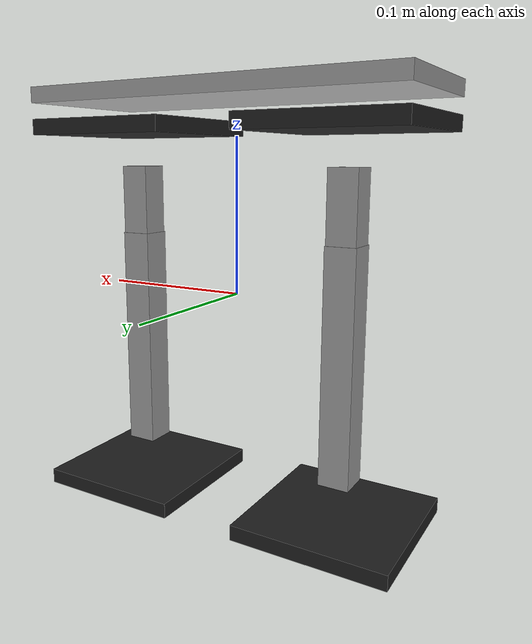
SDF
<?xml version='1.0'?>
<sdf version='1.7'>
  <model name='hyrecro_B_serial_no_sensor'>
    <link name='foot_A'>
      <inertial>
        <mass>1</mass>
        <inertia>
          <ixx>0.166667</ixx>
          <ixy>0</ixy>
          <ixz>0</ixz>
          <iyy>0.166667</iyy>
          <iyz>0</iyz>
          <izz>0.166667</izz>
        </inertia>
        <pose>0 0 0 0 -0 0</pose>
      </inertial>
      <pose>-0.075 -0 -0.138333 0 -0 0</pose>
      <gravity>1</gravity>
      <self_collide>0</self_collide>
      <kinematic>0</kinematic>
      <enable_wind>0</enable_wind>
      <visual name='visual'>
        <pose>0 0 0 0 -0 0</pose>
        <geometry>
          <box>
            <size>0.1 0.1 0.01</size>
          </box>
        </geometry>
        <material>
          <lighting>1</lighting>
          <script>
            <uri>file://media/materials/scripts/gazebo.material</uri>
            <name>Gazebo/Black</name>
          </script>
          <shader type='pixel'>
            <normal_map>__default__</normal_map>
          </shader>
          <ambient>0 0 0 1</ambient>
          <diffuse>0.7 0.7 0.7 1</diffuse>
          <specular>0.01 0.01 0.01 1</specular>
          <emissive>0 0 0 1</emissive>
        </material>
        <transparency>0</transparency>
        <cast_shadows>1</cast_shadows>
      </visual>
      <collision name='collision'>
        <laser_retro>0</laser_retro>
        <max_contacts>10</max_contacts>
        <pose>0 0 0 0 -0 0</pose>
        <geometry>
          <box>
            <size>0.1 0.1 0.01</size>
          </box>
        </geometry>
        <surface>
          <friction>
            <ode>
              <mu>1</mu>
              <mu2>1</mu2>
              <fdir1>0 0 0</fdir1>
              <slip1>0</slip1>
              <slip2>0</slip2>
            </ode>
            <torsional>
              <coefficient>1</coefficient>
              <patch_radius>0</patch_radius>
              <surface_radius>0</surface_radius>
              <use_patch_radius>1</use_patch_radius>
              <ode>
                <slip>0</slip>
              </ode>
            </torsional>
          </friction>
          <bounce>
            <restitution_coefficient>0</restitution_coefficient>
            <threshold>1e+06</threshold>
          </bounce>
          <contact>
            <collide_without_contact>0</collide_without_contact>
            <collide_without_contact_bitmask>1</collide_without_contact_bitmask>
            <collide_bitmask>1</collide_bitmask>
            <ode>
              <soft_cfm>0</soft_cfm>
              <soft_erp>0.2</soft_erp>
              <kp>1e+13</kp>
              <kd>1</kd>
              <max_vel>0.01</max_vel>
              <min_depth>0</min_depth>
            </ode>
            <bullet>
              <split_impulse>1</split_impulse>
              <split_impulse_penetration_threshold>-0.01</split_impulse_penetration_threshold>
              <soft_cfm>0</soft_cfm>
              <soft_erp>0.2</soft_erp>
              <kp>1e+13</kp>
              <kd>1</kd>
            </bullet>
          </contact>
        </surface>
      </collision>
    </link>
    <link name='foot_B'>
      <inertial>
        <mass>1</mass>
        <inertia>
          <ixx>0.166667</ixx>
          <ixy>0</ixy>
          <ixz>0</ixz>
          <iyy>0.166667</iyy>
          <iyz>0</iyz>
          <izz>0.166667</izz>
        </inertia>
        <pose>0 0 0 0 -0 0</pose>
      </inertial>
      <pose>0.075 0 -0.138333 0 -0 0</pose>
      <gravity>1</gravity>
      <self_collide>0</self_collide>
      <kinematic>0</kinematic>
      <enable_wind>0</enable_wind>
      <visual name='visual'>
        <pose>0 0 0 0 -0 0</pose>
        <geometry>
          <box>
            <size>0.1 0.1 0.01</size>
          </box>
        </geometry>
        <material>
          <lighting>1</lighting>
          <script>
            <uri>file://media/materials/scripts/gazebo.material</uri>
            <name>Gazebo/Black</name>
          </script>
          <shader type='pixel'>
            <normal_map>__default__</normal_map>
          </shader>
          <ambient>0.961 0.475 0 1</ambient>
          <diffuse>0.7 0.7 0.7 1</diffuse>
          <specular>0.01 0.01 0.01 1</specular>
          <emissive>0 0 0 1</emissive>
        </material>
        <transparency>0</transparency>
        <cast_shadows>1</cast_shadows>
      </visual>
      <collision name='collision'>
        <laser_retro>0</laser_retro>
        <max_contacts>10</max_contacts>
        <pose>0 0 0 0 -0 0</pose>
        <geometry>
          <box>
            <size>0.1 0.1 0.01</size>
          </box>
        </geometry>
        <surface>
          <friction>
            <ode>
              <mu>1</mu>
              <mu2>1</mu2>
              <fdir1>0 0 0</fdir1>
              <slip1>0</slip1>
              <slip2>0</slip2>
            </ode>
            <torsional>
              <coefficient>1</coefficient>
              <patch_radius>0</patch_radius>
              <surface_radius>0</surface_radius>
              <use_patch_radius>1</use_patch_radius>
              <ode>
                <slip>0</slip>
              </ode>
            </torsional>
          </friction>
          <bounce>
            <restitution_coefficient>0</restitution_coefficient>
            <threshold>1e+06</threshold>
          </bounce>
          <contact>
            <collide_without_contact>0</collide_without_contact>
            <collide_without_contact_bitmask>1</collide_without_contact_bitmask>
            <collide_bitmask>1</collide_bitmask>
            <ode>
              <soft_cfm>0</soft_cfm>
              <soft_erp>0.2</soft_erp>
              <kp>1e+13</kp>
              <kd>1</kd>
              <max_vel>0.01</max_vel>
              <min_depth>0</min_depth>
            </ode>
            <bullet>
              <split_impulse>1</split_impulse>
              <split_impulse_penetration_threshold>-0.01</split_impulse_penetration_threshold>
              <soft_cfm>0</soft_cfm>
              <soft_erp>0.2</soft_erp>
              <kp>1e+13</kp>
              <kd>1</kd>
            </bullet>
          </contact>
        </surface>
      </collision>
    </link>
    <link name='hip'>
      <inertial>
        <mass>1</mass>
        <inertia>
          <ixx>0.166667</ixx>
          <ixy>0</ixy>
          <ixz>0</ixz>
          <iyy>0.166667</iyy>
          <iyz>0</iyz>
          <izz>0.166667</izz>
        </inertia>
        <pose>0 0 0 0 -0 0</pose>
      </inertial>
      <pose>0 -0 0.126667 0 -0 0</pose>
      <gravity>1</gravity>
      <self_collide>0</self_collide>
      <kinematic>0</kinematic>
      <enable_wind>0</enable_wind>
      <visual name='visual'>
        <pose>0 0 0 0 -0 0</pose>
        <geometry>
          <box>
            <size>0.25 0.1 0.01</size>
          </box>
        </geometry>
        <material>
          <lighting>1</lighting>
          <script>
            <uri>file://media/materials/scripts/gazebo.material</uri>
            <name>Gazebo/Grey</name>
          </script>
          <shader type='pixel'>
            <normal_map>__default__</normal_map>
          </shader>
          <ambient>0.729 0.741 0.714 1</ambient>
          <diffuse>0.7 0.7 0.7 1</diffuse>
          <specular>0.01 0.01 0.01 1</specular>
          <emissive>0 0 0 1</emissive>
        </material>
        <transparency>0</transparency>
        <cast_shadows>1</cast_shadows>
      </visual>
      <collision name='collision'>
        <laser_retro>0</laser_retro>
        <max_contacts>10</max_contacts>
        <pose>0 0 0 0 -0 0</pose>
        <geometry>
          <box>
            <size>0.25 0.1 0.01</size>
          </box>
        </geometry>
        <surface>
          <friction>
            <ode>
              <mu>1</mu>
              <mu2>1</mu2>
              <fdir1>0 0 0</fdir1>
              <slip1>0</slip1>
              <slip2>0</slip2>
            </ode>
            <torsional>
              <coefficient>1</coefficient>
              <patch_radius>0</patch_radius>
              <surface_radius>0</surface_radius>
              <use_patch_radius>1</use_patch_radius>
              <ode>
                <slip>0</slip>
              </ode>
            </torsional>
          </friction>
          <bounce>
            <restitution_coefficient>0</restitution_coefficient>
            <threshold>1e+06</threshold>
          </bounce>
          <contact>
            <collide_without_contact>0</collide_without_contact>
            <collide_without_contact_bitmask>1</collide_without_contact_bitmask>
            <collide_bitmask>1</collide_bitmask>
            <ode>
              <soft_cfm>0</soft_cfm>
              <soft_erp>0.2</soft_erp>
              <kp>1e+13</kp>
              <kd>1</kd>
              <max_vel>0.01</max_vel>
              <min_depth>0</min_depth>
            </ode>
            <bullet>
              <split_impulse>1</split_impulse>
              <split_impulse_penetration_threshold>-0.01</split_impulse_penetration_threshold>
              <soft_cfm>0</soft_cfm>
              <soft_erp>0.2</soft_erp>
              <kp>1e+13</kp>
              <kd>1</kd>
            </bullet>
          </contact>
        </surface>
      </collision>
    </link>
    <link name='hip_A'>
      <inertial>
        <mass>1</mass>
        <inertia>
          <ixx>0.166667</ixx>
          <ixy>0</ixy>
          <ixz>0</ixz>
          <iyy>0.166667</iyy>
          <iyz>0</iyz>
          <izz>0.166667</izz>
        </inertia>
        <pose>0 0 0 0 -0 0</pose>
      </inertial>
      <pose>-0.075 0 0.106667 0 -0 0</pose>
      <gravity>1</gravity>
      <self_collide>0</self_collide>
      <kinematic>0</kinematic>
      <enable_wind>0</enable_wind>
      <visual name='visual'>
        <pose>0 0 0 0 -0 0</pose>
        <geometry>
          <box>
            <size>0.1 0.1 0.01</size>
          </box>
        </geometry>
        <material>
          <lighting>1</lighting>
          <script>
            <uri>file://media/materials/scripts/gazebo.material</uri>
            <name>Gazebo/Black</name>
          </script>
          <shader type='pixel'>
            <normal_map>__default__</normal_map>
          </shader>
          <ambient>0 0 0 1</ambient>
          <diffuse>0.7 0.7 0.7 1</diffuse>
          <specular>0.01 0.01 0.01 1</specular>
          <emissive>0 0 0 1</emissive>
        </material>
        <transparency>0</transparency>
        <cast_shadows>1</cast_shadows>
      </visual>
      <collision name='collision'>
        <laser_retro>0</laser_retro>
        <max_contacts>10</max_contacts>
        <pose>0 0 0 0 -0 0</pose>
        <geometry>
          <box>
            <size>0.1 0.1 0.01</size>
          </box>
        </geometry>
        <surface>
          <friction>
            <ode>
              <mu>1</mu>
              <mu2>1</mu2>
              <fdir1>0 0 0</fdir1>
              <slip1>0</slip1>
              <slip2>0</slip2>
            </ode>
            <torsional>
              <coefficient>1</coefficient>
              <patch_radius>0</patch_radius>
              <surface_radius>0</surface_radius>
              <use_patch_radius>1</use_patch_radius>
              <ode>
                <slip>0</slip>
              </ode>
            </torsional>
          </friction>
          <bounce>
            <restitution_coefficient>0</restitution_coefficient>
            <threshold>1e+06</threshold>
          </bounce>
          <contact>
            <collide_without_contact>0</collide_without_contact>
            <collide_without_contact_bitmask>1</collide_without_contact_bitmask>
            <collide_bitmask>1</collide_bitmask>
            <ode>
              <soft_cfm>0</soft_cfm>
              <soft_erp>0.2</soft_erp>
              <kp>1e+13</kp>
              <kd>1</kd>
              <max_vel>0.01</max_vel>
              <min_depth>0</min_depth>
            </ode>
            <bullet>
              <split_impulse>1</split_impulse>
              <split_impulse_penetration_threshold>-0.01</split_impulse_penetration_threshold>
              <soft_cfm>0</soft_cfm>
              <soft_erp>0.2</soft_erp>
              <kp>1e+13</kp>
              <kd>1</kd>
            </bullet>
          </contact>
        </surface>
      </collision>
    </link>
    <link name='hip_B'>
      <inertial>
        <mass>1</mass>
        <inertia>
          <ixx>0.166667</ixx>
          <ixy>0</ixy>
          <ixz>0</ixz>
          <iyy>0.166667</iyy>
          <iyz>0</iyz>
          <izz>0.166667</izz>
        </inertia>
        <pose>0 0 0 0 -0 0</pose>
      </inertial>
      <pose>0.075 0 0.106667 0 -0 0</pose>
      <gravity>1</gravity>
      <self_collide>0</self_collide>
      <kinematic>0</kinematic>
      <enable_wind>0</enable_wind>
      <visual name='visual'>
        <pose>0 0 0 0 -0 0</pose>
        <geometry>
          <box>
            <size>0.1 0.1 0.01</size>
          </box>
        </geometry>
        <material>
          <lighting>1</lighting>
          <script>
            <uri>file://media/materials/scripts/gazebo.material</uri>
            <name>Gazebo/Black</name>
          </script>
          <shader type='pixel'>
            <normal_map>__default__</normal_map>
          </shader>
          <ambient>0 0 0 1</ambient>
          <diffuse>0.7 0.7 0.7 1</diffuse>
          <specular>0.01 0.01 0.01 1</specular>
          <emissive>0 0 0 1</emissive>
        </material>
        <transparency>0</transparency>
        <cast_shadows>1</cast_shadows>
      </visual>
      <collision name='collision'>
        <laser_retro>0</laser_retro>
        <max_contacts>10</max_contacts>
        <pose>0 0 0 0 -0 0</pose>
        <geometry>
          <box>
            <size>0.1 0.1 0.01</size>
          </box>
        </geometry>
        <surface>
          <friction>
            <ode>
              <mu>1</mu>
              <mu2>1</mu2>
              <fdir1>0 0 0</fdir1>
              <slip1>0</slip1>
              <slip2>0</slip2>
            </ode>
            <torsional>
              <coefficient>1</coefficient>
              <patch_radius>0</patch_radius>
              <surface_radius>0</surface_radius>
              <use_patch_radius>1</use_patch_radius>
              <ode>
                <slip>0</slip>
              </ode>
            </torsional>
          </friction>
          <bounce>
            <restitution_coefficient>0</restitution_coefficient>
            <threshold>1e+06</threshold>
          </bounce>
          <contact>
            <collide_without_contact>0</collide_without_contact>
            <collide_without_contact_bitmask>1</collide_without_contact_bitmask>
            <collide_bitmask>1</collide_bitmask>
            <ode>
              <soft_cfm>0</soft_cfm>
              <soft_erp>0.2</soft_erp>
              <kp>1e+13</kp>
              <kd>1</kd>
              <max_vel>0.01</max_vel>
              <min_depth>0</min_depth>
            </ode>
            <bullet>
              <split_impulse>1</split_impulse>
              <split_impulse_penetration_threshold>-0.01</split_impulse_penetration_threshold>
              <soft_cfm>0</soft_cfm>
              <soft_erp>0.2</soft_erp>
              <kp>1e+13</kp>
              <kd>1</kd>
            </bullet>
          </contact>
        </surface>
      </collision>
    </link>
    <link name='pist_1A'>
      <inertial>
        <mass>1</mass>
        <inertia>
          <ixx>0.166667</ixx>
          <ixy>0</ixy>
          <ixz>0</ixz>
          <iyy>0.166667</iyy>
          <iyz>0</iyz>
          <izz>0.166667</izz>
        </inertia>
        <pose>0 0 0 0 -0 0</pose>
      </inertial>
      <pose>-0.075 0 0.006667 0 -0 0</pose>
      <gravity>1</gravity>
      <self_collide>0</self_collide>
      <kinematic>0</kinematic>
      <enable_wind>0</enable_wind>
      <visual name='visual'>
        <pose>0 0 0 0 -0 0</pose>
        <geometry>
          <box>
            <size>0.019 0.019 0.15</size>
          </box>
        </geometry>
        <material>
          <lighting>1</lighting>
          <script>
            <uri>file://media/materials/scripts/gazebo.material</uri>
            <name>Gazebo/Grey</name>
          </script>
          <shader type='pixel'>
            <normal_map>__default__</normal_map>
          </shader>
          <ambient>0.729 0.741 0.714 1</ambient>
          <diffuse>0.7 0.7 0.7 1</diffuse>
          <specular>0.01 0.01 0.01 1</specular>
          <emissive>0 0 0 1</emissive>
        </material>
        <transparency>0</transparency>
        <cast_shadows>1</cast_shadows>
      </visual>
      <collision name='collision'>
        <laser_retro>0</laser_retro>
        <max_contacts>10</max_contacts>
        <pose>0 0 0 0 -0 0</pose>
        <geometry>
          <box>
            <size>0.019 0.019 0.15</size>
          </box>
        </geometry>
        <surface>
          <friction>
            <ode>
              <mu>1</mu>
              <mu2>1</mu2>
              <fdir1>0 0 0</fdir1>
              <slip1>0</slip1>
              <slip2>0</slip2>
            </ode>
            <torsional>
              <coefficient>1</coefficient>
              <patch_radius>0</patch_radius>
              <surface_radius>0</surface_radius>
              <use_patch_radius>1</use_patch_radius>
              <ode>
                <slip>0</slip>
              </ode>
            </torsional>
          </friction>
          <bounce>
            <restitution_coefficient>0</restitution_coefficient>
            <threshold>1e+06</threshold>
          </bounce>
          <contact>
            <collide_without_contact>0</collide_without_contact>
            <collide_without_contact_bitmask>1</collide_without_contact_bitmask>
            <collide_bitmask>1</collide_bitmask>
            <ode>
              <soft_cfm>0</soft_cfm>
              <soft_erp>0.2</soft_erp>
              <kp>1e+13</kp>
              <kd>1</kd>
              <max_vel>0.01</max_vel>
              <min_depth>0</min_depth>
            </ode>
            <bullet>
              <split_impulse>1</split_impulse>
              <split_impulse_penetration_threshold>-0.01</split_impulse_penetration_threshold>
              <soft_cfm>0</soft_cfm>
              <soft_erp>0.2</soft_erp>
              <kp>1e+13</kp>
              <kd>1</kd>
            </bullet>
          </contact>
        </surface>
      </collision>
    </link>
    <link name='pist_1B'>
      <inertial>
        <mass>1</mass>
        <inertia>
          <ixx>0.166667</ixx>
          <ixy>0</ixy>
          <ixz>0</ixz>
          <iyy>0.166667</iyy>
          <iyz>0</iyz>
          <izz>0.166667</izz>
        </inertia>
        <pose>0 0 0 0 -0 0</pose>
      </inertial>
      <pose>0.075 0 0.006667 0 -0 0</pose>
      <gravity>1</gravity>
      <self_collide>0</self_collide>
      <kinematic>0</kinematic>
      <enable_wind>0</enable_wind>
      <visual name='visual'>
        <pose>0 0 0 0 -0 0</pose>
        <geometry>
          <box>
            <size>0.019 0.019 0.15</size>
          </box>
        </geometry>
        <material>
          <lighting>1</lighting>
          <script>
            <uri>file://media/materials/scripts/gazebo.material</uri>
            <name>Gazebo/Grey</name>
          </script>
          <shader type='pixel'>
            <normal_map>__default__</normal_map>
          </shader>
          <ambient>0.729 0.741 0.714 1</ambient>
          <diffuse>0.7 0.7 0.7 1</diffuse>
          <specular>0.01 0.01 0.01 1</specular>
          <emissive>0 0 0 1</emissive>
        </material>
        <transparency>0</transparency>
        <cast_shadows>1</cast_shadows>
      </visual>
      <collision name='collision'>
        <laser_retro>0</laser_retro>
        <max_contacts>10</max_contacts>
        <pose>0 0 0 0 -0 0</pose>
        <geometry>
          <box>
            <size>0.019 0.019 0.15</size>
          </box>
        </geometry>
        <surface>
          <friction>
            <ode>
              <mu>1</mu>
              <mu2>1</mu2>
              <fdir1>0 0 0</fdir1>
              <slip1>0</slip1>
              <slip2>0</slip2>
            </ode>
            <torsional>
              <coefficient>1</coefficient>
              <patch_radius>0</patch_radius>
              <surface_radius>0</surface_radius>
              <use_patch_radius>1</use_patch_radius>
              <ode>
                <slip>0</slip>
              </ode>
            </torsional>
          </friction>
          <bounce>
            <restitution_coefficient>0</restitution_coefficient>
            <threshold>1e+06</threshold>
          </bounce>
          <contact>
            <collide_without_contact>0</collide_without_contact>
            <collide_without_contact_bitmask>1</collide_without_contact_bitmask>
            <collide_bitmask>1</collide_bitmask>
            <ode>
              <soft_cfm>0</soft_cfm>
              <soft_erp>0.2</soft_erp>
              <kp>1e+13</kp>
              <kd>1</kd>
              <max_vel>0.01</max_vel>
              <min_depth>0</min_depth>
            </ode>
            <bullet>
              <split_impulse>1</split_impulse>
              <split_impulse_penetration_threshold>-0.01</split_impulse_penetration_threshold>
              <soft_cfm>0</soft_cfm>
              <soft_erp>0.2</soft_erp>
              <kp>1e+13</kp>
              <kd>1</kd>
            </bullet>
          </contact>
        </surface>
      </collision>
    </link>
    <link name='pist_2A'>
      <inertial>
        <mass>1</mass>
        <inertia>
          <ixx>0.166667</ixx>
          <ixy>0</ixy>
          <ixz>0</ixz>
          <iyy>0.166667</iyy>
          <iyz>0</iyz>
          <izz>0.166667</izz>
        </inertia>
        <pose>0 0 0 0 -0 0</pose>
      </inertial>
      <pose>-0.075 -0 -0.038333 0 -0 0</pose>
      <gravity>1</gravity>
      <self_collide>0</self_collide>
      <kinematic>0</kinematic>
      <enable_wind>0</enable_wind>
      <visual name='visual'>
        <pose>0 0 0 0 -0 0</pose>
        <geometry>
          <box>
            <size>0.02 0.02 0.15</size>
          </box>
        </geometry>
        <material>
          <lighting>1</lighting>
          <script>
            <uri>file://media/materials/scripts/gazebo.material</uri>
            <name>Gazebo/Grey</name>
          </script>
          <shader type='pixel'>
            <normal_map>__default__</normal_map>
          </shader>
          <ambient>0 0 0 1</ambient>
          <diffuse>0.7 0.7 0.7 1</diffuse>
          <specular>0.01 0.01 0.01 1</specular>
          <emissive>0 0 0 1</emissive>
        </material>
        <transparency>0</transparency>
        <cast_shadows>1</cast_shadows>
      </visual>
      <collision name='collision'>
        <laser_retro>0</laser_retro>
        <max_contacts>10</max_contacts>
        <pose>0 0 0 0 -0 0</pose>
        <geometry>
          <box>
            <size>0.02 0.02 0.15</size>
          </box>
        </geometry>
        <surface>
          <friction>
            <ode>
              <mu>1</mu>
              <mu2>1</mu2>
              <fdir1>0 0 0</fdir1>
              <slip1>0</slip1>
              <slip2>0</slip2>
            </ode>
            <torsional>
              <coefficient>1</coefficient>
              <patch_radius>0</patch_radius>
              <surface_radius>0</surface_radius>
              <use_patch_radius>1</use_patch_radius>
              <ode>
                <slip>0</slip>
              </ode>
            </torsional>
          </friction>
          <bounce>
            <restitution_coefficient>0</restitution_coefficient>
            <threshold>1e+06</threshold>
          </bounce>
          <contact>
            <collide_without_contact>0</collide_without_contact>
            <collide_without_contact_bitmask>1</collide_without_contact_bitmask>
            <collide_bitmask>1</collide_bitmask>
            <ode>
              <soft_cfm>0</soft_cfm>
              <soft_erp>0.2</soft_erp>
              <kp>1e+13</kp>
              <kd>1</kd>
              <max_vel>0.01</max_vel>
              <min_depth>0</min_depth>
            </ode>
            <bullet>
              <split_impulse>1</split_impulse>
              <split_impulse_penetration_threshold>-0.01</split_impulse_penetration_threshold>
              <soft_cfm>0</soft_cfm>
              <soft_erp>0.2</soft_erp>
              <kp>1e+13</kp>
              <kd>1</kd>
            </bullet>
          </contact>
        </surface>
      </collision>
    </link>
    <link name='pist_2B'>
      <inertial>
        <mass>1</mass>
        <inertia>
          <ixx>0.166667</ixx>
          <ixy>0</ixy>
          <ixz>0</ixz>
          <iyy>0.166667</iyy>
          <iyz>0</iyz>
          <izz>0.166667</izz>
        </inertia>
        <pose>0 0 0 0 -0 0</pose>
      </inertial>
      <pose>0.075 -0 -0.038333 0 -0 0</pose>
      <gravity>1</gravity>
      <self_collide>0</self_collide>
      <kinematic>0</kinematic>
      <enable_wind>0</enable_wind>
      <visual name='visual'>
        <pose>0 0 0 0 -0 0</pose>
        <geometry>
          <box>
            <size>0.02 0.02 0.15</size>
          </box>
        </geometry>
        <material>
          <lighting>1</lighting>
          <script>
            <uri>file://media/materials/scripts/gazebo.material</uri>
            <name>Gazebo/Grey</name>
          </script>
          <shader type='pixel'>
            <normal_map>__default__</normal_map>
          </shader>
          <ambient>0 0 0 1</ambient>
          <diffuse>0.7 0.7 0.7 1</diffuse>
          <specular>0.01 0.01 0.01 1</specular>
          <emissive>0 0 0 1</emissive>
        </material>
        <transparency>0</transparency>
        <cast_shadows>1</cast_shadows>
      </visual>
      <collision name='collision'>
        <laser_retro>0</laser_retro>
        <max_contacts>10</max_contacts>
        <pose>0 0 0 0 -0 0</pose>
        <geometry>
          <box>
            <size>0.02 0.02 0.15</size>
          </box>
        </geometry>
        <surface>
          <friction>
            <ode>
              <mu>1</mu>
              <mu2>1</mu2>
              <fdir1>0 0 0</fdir1>
              <slip1>0</slip1>
              <slip2>0</slip2>
            </ode>
            <torsional>
              <coefficient>1</coefficient>
              <patch_radius>0</patch_radius>
              <surface_radius>0</surface_radius>
              <use_patch_radius>1</use_patch_radius>
              <ode>
                <slip>0</slip>
              </ode>
            </torsional>
          </friction>
          <bounce>
            <restitution_coefficient>0</restitution_coefficient>
            <threshold>1e+06</threshold>
          </bounce>
          <contact>
            <collide_without_contact>0</collide_without_contact>
            <collide_without_contact_bitmask>1</collide_without_contact_bitmask>
            <collide_bitmask>1</collide_bitmask>
            <ode>
              <soft_cfm>0</soft_cfm>
              <soft_erp>0.2</soft_erp>
              <kp>1e+13</kp>
              <kd>1</kd>
              <max_vel>0.01</max_vel>
              <min_depth>0</min_depth>
            </ode>
            <bullet>
              <split_impulse>1</split_impulse>
              <split_impulse_penetration_threshold>-0.01</split_impulse_penetration_threshold>
              <soft_cfm>0</soft_cfm>
              <soft_erp>0.2</soft_erp>
              <kp>1e+13</kp>
              <kd>1</kd>
            </bullet>
          </contact>
        </surface>
      </collision>
    </link>
    <joint name='q1' type='revolute'>
      <parent>pist_2A</parent>
      <child>foot_A</child>
      <pose>0 0 0.025 1.57079 -0 0</pose>
      <axis>
        <xyz>0 0 1</xyz>
        <limit>
          <lower>-1.79769e+308</lower>
          <upper>1.79769e+308</upper>
          <effort>-1</effort>
          <velocity>-1</velocity>
        </limit>
        <dynamics>
          <spring_reference>0</spring_reference>
          <spring_stiffness>0</spring_stiffness>
          <damping>0</damping>
          <friction>0</friction>
        </dynamics>
      </axis>
      <physics>
        <ode>
          <limit>
            <cfm>0</cfm>
            <erp>0.2</erp>
          </limit>
          <suspension>
            <cfm>0</cfm>
            <erp>0.2</erp>
          </suspension>
        </ode>
      </physics>
    </joint>
    <joint name='q2' type='prismatic'>
      <parent>pist_1A</parent>
      <child>pist_2A</child>
      <pose>0 0 -0.03 0 -0 0</pose>
      <axis>
        <xyz>0 0 1</xyz>
        <limit>
          <lower>-1.79769e+308</lower>
          <upper>1.79769e+308</upper>
          <effort>-1</effort>
          <velocity>-1</velocity>
        </limit>
        <dynamics>
          <spring_reference>0</spring_reference>
          <spring_stiffness>0</spring_stiffness>
          <damping>0</damping>
          <friction>0</friction>
        </dynamics>
      </axis>
      <physics>
        <ode>
          <limit>
            <cfm>0</cfm>
            <erp>0.2</erp>
          </limit>
          <suspension>
            <cfm>0</cfm>
            <erp>0.2</erp>
          </suspension>
        </ode>
      </physics>
    </joint>
    <joint name='q3' type='revolute'>
      <parent>hip_A</parent>
      <child>pist_1A</child>
      <pose>0 0 0.075 1.57079 -0 0</pose>
      <axis>
        <xyz>0 0 1</xyz>
        <limit>
          <lower>-1.79769e+308</lower>
          <upper>1.79769e+308</upper>
          <effort>-1</effort>
          <velocity>-1</velocity>
        </limit>
        <dynamics>
          <spring_reference>0</spring_reference>
          <spring_stiffness>0</spring_stiffness>
          <damping>0</damping>
          <friction>0</friction>
        </dynamics>
      </axis>
      <physics>
        <ode>
          <limit>
            <cfm>0</cfm>
            <erp>0.2</erp>
          </limit>
          <suspension>
            <cfm>0</cfm>
            <erp>0.2</erp>
          </suspension>
        </ode>
      </physics>
    </joint>
    <joint name='q4' type='revolute'>
      <parent>hip</parent>
      <child>hip_A</child>
      <pose>0 0 0.02 0 -0 0</pose>
      <axis>
        <xyz>0 0 1</xyz>
        <limit>
          <lower>-1.79769e+308</lower>
          <upper>1.79769e+308</upper>
          <effort>-1</effort>
          <velocity>-1</velocity>
        </limit>
        <dynamics>
          <spring_reference>0</spring_reference>
          <spring_stiffness>0</spring_stiffness>
          <damping>0</damping>
          <friction>0</friction>
        </dynamics>
      </axis>
      <physics>
        <ode>
          <limit>
            <cfm>0</cfm>
            <erp>0.2</erp>
          </limit>
          <suspension>
            <cfm>0</cfm>
            <erp>0.2</erp>
          </suspension>
        </ode>
      </physics>
    </joint>
    <joint name='q5' type='revolute'>
      <parent>hip_B</parent>
      <child>hip</child>
      <pose>0.075 0 0 0 -0 0</pose>
      <axis>
        <xyz>0 0 1</xyz>
        <limit>
          <lower>-1.79769e+308</lower>
          <upper>1.79769e+308</upper>
          <effort>-1</effort>
          <velocity>-1</velocity>
        </limit>
        <dynamics>
          <spring_reference>0</spring_reference>
          <spring_stiffness>0</spring_stiffness>
          <damping>0</damping>
          <friction>0</friction>
        </dynamics>
      </axis>
      <physics>
        <ode>
          <limit>
            <cfm>0</cfm>
            <erp>0.2</erp>
          </limit>
          <suspension>
            <cfm>0</cfm>
            <erp>0.2</erp>
          </suspension>
        </ode>
      </physics>
    </joint>
    <joint name='q6' type='revolute'>
      <parent>pist_1B</parent>
      <child>hip_B</child>
      <pose>0 0 -0.025 1.57079 -0 0</pose>
      <axis>
        <xyz>0 0 1</xyz>
        <limit>
          <lower>-1.79769e+308</lower>
          <upper>1.79769e+308</upper>
          <effort>-1</effort>
          <velocity>-1</velocity>
        </limit>
        <dynamics>
          <spring_reference>0</spring_reference>
          <spring_stiffness>0</spring_stiffness>
          <damping>0</damping>
          <friction>0</friction>
        </dynamics>
      </axis>
      <physics>
        <ode>
          <limit>
            <cfm>0</cfm>
            <erp>0.2</erp>
          </limit>
          <suspension>
            <cfm>0</cfm>
            <erp>0.2</erp>
          </suspension>
        </ode>
      </physics>
    </joint>
    <joint name='q7' type='prismatic'>
      <parent>pist_2B</parent>
      <child>pist_1B</child>
      <pose>0 0 -0.075 0 -0 0</pose>
      <axis>
        <xyz>0 0 -1</xyz>
        <limit>
          <lower>-1.79769e+308</lower>
          <upper>1.79769e+308</upper>
          <effort>-1</effort>
          <velocity>-1</velocity>
        </limit>
        <dynamics>
          <spring_reference>0</spring_reference>
          <spring_stiffness>0</spring_stiffness>
          <damping>0</damping>
          <friction>0</friction>
        </dynamics>
      </axis>
      <physics>
        <ode>
          <limit>
            <cfm>0</cfm>
            <erp>0.2</erp>
          </limit>
          <suspension>
            <cfm>0</cfm>
            <erp>0.2</erp>
          </suspension>
        </ode>
      </physics>
    </joint>
    <joint name='q8' type='revolute'>
      <parent>foot_B</parent>
      <child>pist_2B</child>
      <pose>0 0 -0.075 1.57079 -0 0</pose>
      <axis>
        <xyz>0 0 1</xyz>
        <limit>
          <lower>-1.79769e+308</lower>
          <upper>1.79769e+308</upper>
          <effort>-1</effort>
          <velocity>-1</velocity>
        </limit>
        <dynamics>
          <spring_reference>0</spring_reference>
          <spring_stiffness>0</spring_stiffness>
          <damping>0</damping>
          <friction>0</friction>
        </dynamics>
      </axis>
      <physics>
        <ode>
          <limit>
            <cfm>0</cfm>
            <erp>0.2</erp>
          </limit>
          <suspension>
            <cfm>0</cfm>
            <erp>0.2</erp>
          </suspension>
        </ode>
      </physics>
    </joint>
    <static>0</static>
    <allow_auto_disable>1</allow_auto_disable>
  </model>
</sdf>
